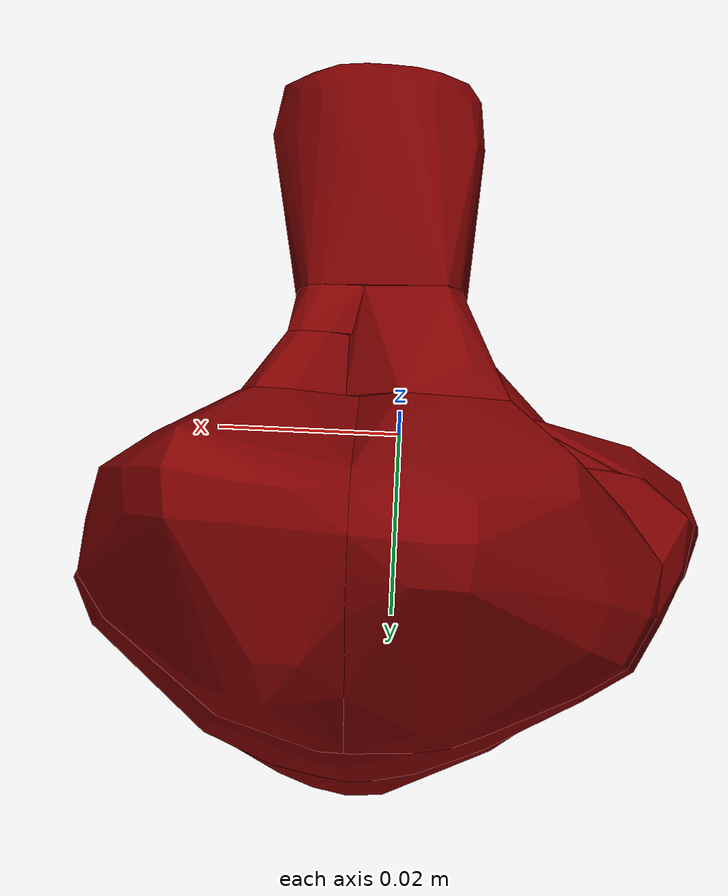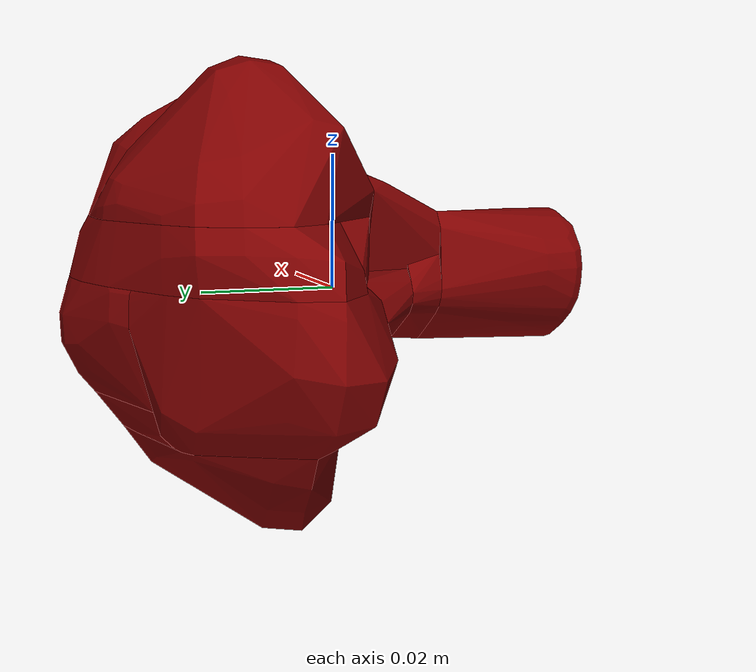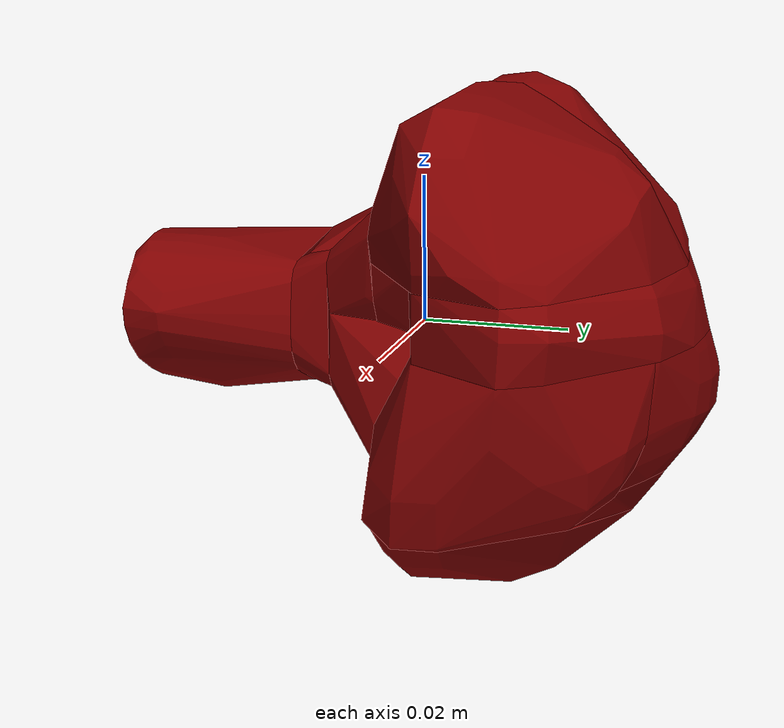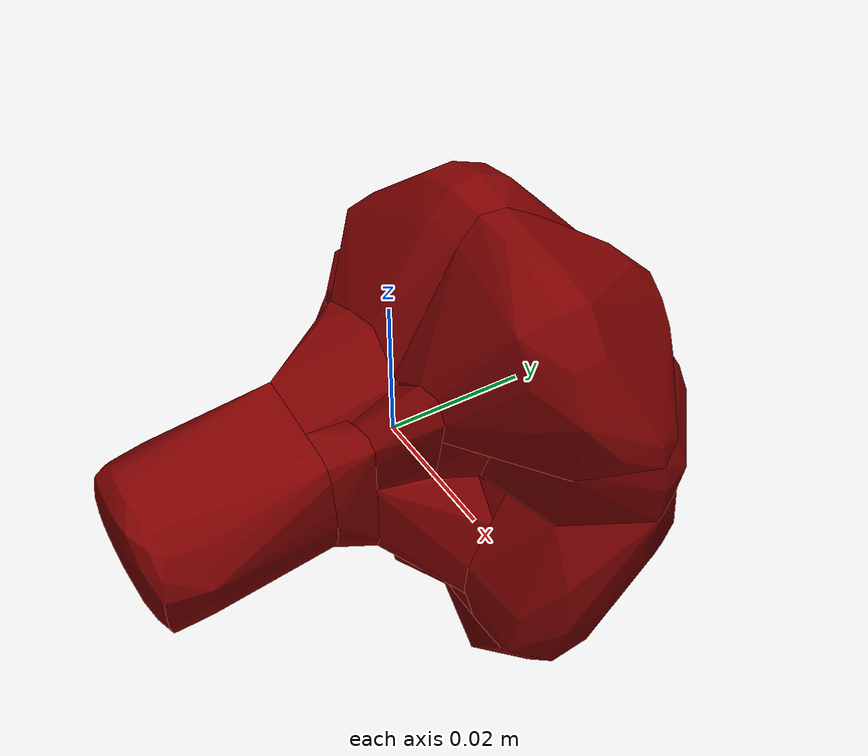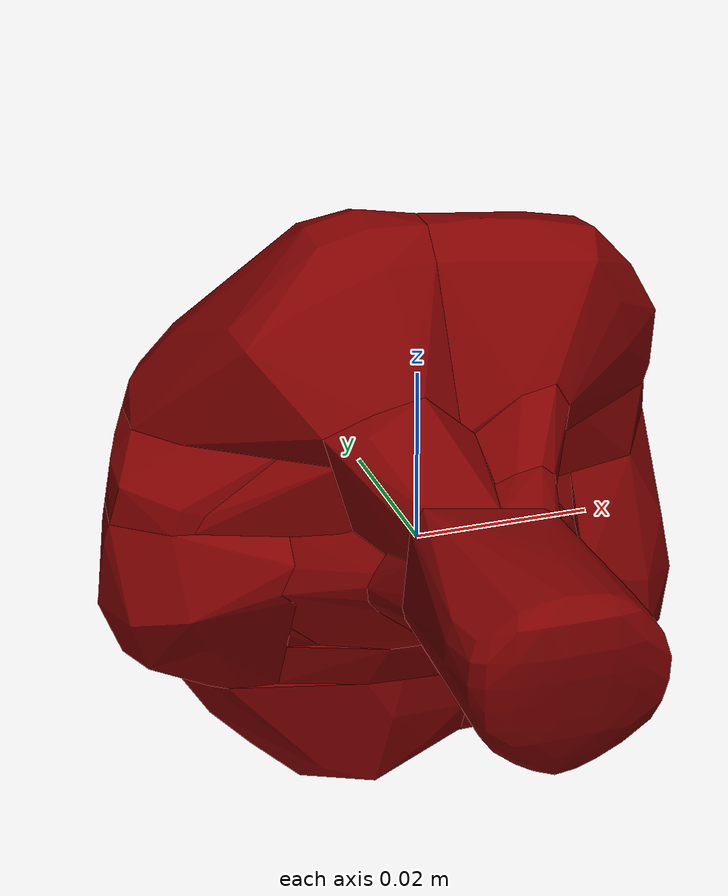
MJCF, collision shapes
<?xml version='1.0' encoding='utf-8'?>
<mujoco model="broccoli_6">
  <asset>
    <mesh file="visual/model_normalized_0.obj" name="model_normalized_0_vis" scale="0.07999999999999997 0.07999999999999997 0.07999999999999997" refquat="0.4999999999999999 0.4999999999999999 0.49999999999999994 0.5" />
    <texture type="2d" name="image0" file="visual/image0.png" />
    <material name="Material.004" texture="image0" specular="0.5" shininess="0.013610682" />
    <mesh file="collision/collision_mesh_collision_0.obj" name="broccoli_collision_mesh_0" scale="0.07999999999999997 0.07999999999999997 0.07999999999999997" refquat="0.4999999999999999 0.4999999999999999 0.49999999999999994 0.5" />
    <mesh file="collision/collision_mesh_collision_1.obj" name="broccoli_collision_mesh_1" scale="0.07999999999999997 0.07999999999999997 0.07999999999999997" refquat="0.4999999999999999 0.4999999999999999 0.49999999999999994 0.5" />
    <mesh file="collision/collision_mesh_collision_2.obj" name="broccoli_collision_mesh_2" scale="0.07999999999999997 0.07999999999999997 0.07999999999999997" refquat="0.4999999999999999 0.4999999999999999 0.49999999999999994 0.5" />
    <mesh file="collision/collision_mesh_collision_3.obj" name="broccoli_collision_mesh_3" scale="0.07999999999999997 0.07999999999999997 0.07999999999999997" refquat="0.4999999999999999 0.4999999999999999 0.49999999999999994 0.5" />
    <mesh file="collision/collision_mesh_collision_4.obj" name="broccoli_collision_mesh_4" scale="0.07999999999999997 0.07999999999999997 0.07999999999999997" refquat="0.4999999999999999 0.4999999999999999 0.49999999999999994 0.5" />
    <mesh file="collision/collision_mesh_collision_5.obj" name="broccoli_collision_mesh_5" scale="0.07999999999999997 0.07999999999999997 0.07999999999999997" refquat="0.4999999999999999 0.4999999999999999 0.49999999999999994 0.5" />
    <mesh file="collision/collision_mesh_collision_6.obj" name="broccoli_collision_mesh_6" scale="0.07999999999999997 0.07999999999999997 0.07999999999999997" refquat="0.4999999999999999 0.4999999999999999 0.49999999999999994 0.5" />
    <mesh file="collision/collision_mesh_collision_7.obj" name="broccoli_collision_mesh_7" scale="0.07999999999999997 0.07999999999999997 0.07999999999999997" refquat="0.4999999999999999 0.4999999999999999 0.49999999999999994 0.5" />
    <mesh file="collision/collision_mesh_collision_8.obj" name="broccoli_collision_mesh_8" scale="0.07999999999999997 0.07999999999999997 0.07999999999999997" refquat="0.4999999999999999 0.4999999999999999 0.49999999999999994 0.5" />
    <mesh file="collision/collision_mesh_collision_9.obj" name="broccoli_collision_mesh_9" scale="0.07999999999999997 0.07999999999999997 0.07999999999999997" refquat="0.4999999999999999 0.4999999999999999 0.49999999999999994 0.5" />
    <mesh file="collision/collision_mesh_collision_10.obj" name="broccoli_collision_mesh_10" scale="0.07999999999999997 0.07999999999999997 0.07999999999999997" refquat="0.4999999999999999 0.4999999999999999 0.49999999999999994 0.5" />
    <mesh file="collision/collision_mesh_collision_11.obj" name="broccoli_collision_mesh_11" scale="0.07999999999999997 0.07999999999999997 0.07999999999999997" refquat="0.4999999999999999 0.4999999999999999 0.49999999999999994 0.5" />
    <mesh file="collision/collision_mesh_collision_12.obj" name="broccoli_collision_mesh_12" scale="0.07999999999999997 0.07999999999999997 0.07999999999999997" refquat="0.4999999999999999 0.4999999999999999 0.49999999999999994 0.5" />
    <mesh file="collision/collision_mesh_collision_13.obj" name="broccoli_collision_mesh_13" scale="0.07999999999999997 0.07999999999999997 0.07999999999999997" refquat="0.4999999999999999 0.4999999999999999 0.49999999999999994 0.5" />
    <mesh file="collision/collision_mesh_collision_14.obj" name="broccoli_collision_mesh_14" scale="0.07999999999999997 0.07999999999999997 0.07999999999999997" refquat="0.4999999999999999 0.4999999999999999 0.49999999999999994 0.5" />
    <mesh file="collision/collision_mesh_collision_15.obj" name="broccoli_collision_mesh_15" scale="0.07999999999999997 0.07999999999999997 0.07999999999999997" refquat="0.4999999999999999 0.4999999999999999 0.49999999999999994 0.5" />
  </asset>
  <default>
    <default class="region">
      <geom group="1" conaffinity="0" contype="0" rgba="0 1 0 0" />
    </default>
    <default class="collision">
      <geom group="0" rgba="0.5 0 0 0.5" density="1000.0" />
    </default>
  </default>
  <worldbody>
    <body>
      <body name="object">
        <geom solimp="0.998 0.998 0.001" solref="0.001 1" density="100" friction="0.95 0.3 0.1" type="mesh" mesh="model_normalized_0_vis" conaffinity="0" contype="0" group="1" material="Material.004" />
        <geom class="region" name="reg_bbox" type="box" pos="9.560143790232619e-07 -1.797411959099104e-06 7.350414141904513e-07" size="0.034246750405392115 0.039998200066674865 0.033729999814263695" />
        <geom mesh="broccoli_collision_mesh_0" type="mesh" class="collision" />
        <geom mesh="broccoli_collision_mesh_1" type="mesh" class="collision" />
        <geom mesh="broccoli_collision_mesh_2" type="mesh" class="collision" />
        <geom mesh="broccoli_collision_mesh_3" type="mesh" class="collision" />
        <geom mesh="broccoli_collision_mesh_4" type="mesh" class="collision" />
        <geom mesh="broccoli_collision_mesh_5" type="mesh" class="collision" />
        <geom mesh="broccoli_collision_mesh_6" type="mesh" class="collision" />
        <geom mesh="broccoli_collision_mesh_7" type="mesh" class="collision" />
        <geom mesh="broccoli_collision_mesh_8" type="mesh" class="collision" />
        <geom mesh="broccoli_collision_mesh_9" type="mesh" class="collision" />
        <geom mesh="broccoli_collision_mesh_10" type="mesh" class="collision" />
        <geom mesh="broccoli_collision_mesh_11" type="mesh" class="collision" />
        <geom mesh="broccoli_collision_mesh_12" type="mesh" class="collision" />
        <geom mesh="broccoli_collision_mesh_13" type="mesh" class="collision" />
        <geom mesh="broccoli_collision_mesh_14" type="mesh" class="collision" />
        <geom mesh="broccoli_collision_mesh_15" type="mesh" class="collision" />
      </body>
    <site rgba="0 0 0 0" size="0.005" pos="0 0 -0.033729265" name="bottom_site" /><site rgba="0 0 0 0" size="0.005" pos="0 0 0.033730735" name="top_site" /><site rgba="0 0 0 0" size="0.005" pos="0.039999997 0.039999997 0" name="horizontal_radius_site" /></body>
  </worldbody>
</mujoco>
